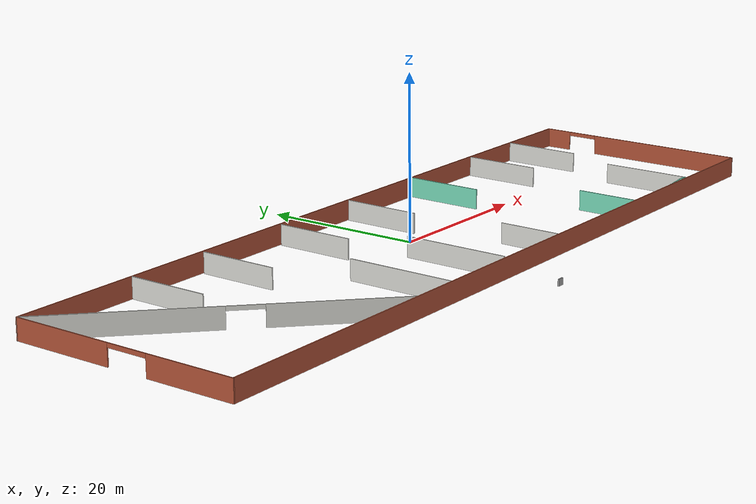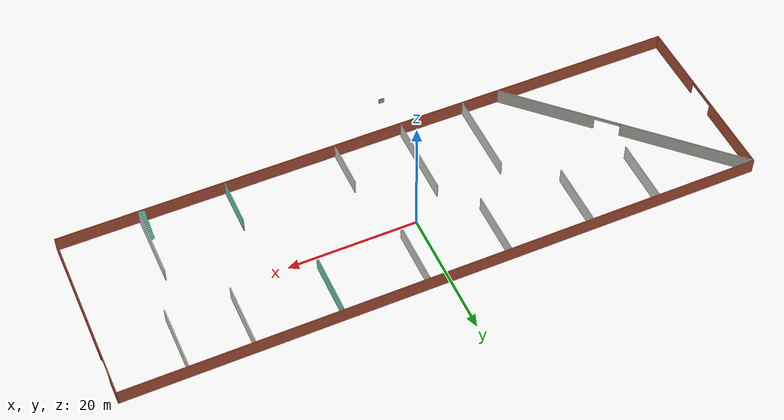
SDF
<?xml version='1.0'?>
<sdf version='1.6'>
  <model name='mybuild'>
    <pose frame=''>-0.240831 -2.44222 0 0 -0 0</pose>
    <link name='Stairs_0'>
      <visual name='Stairs_0_Visual_0'>
        <pose frame=''>36.1595 -10.4414 0.083333 0 -0 0</pose>
        <geometry>
          <box>
            <size>1 0.233333 0.166667</size>
          </box>
        </geometry>
        <material>
          <script>
            <uri>file://media/materials/scripts/gazebo.material</uri>
            <name>Gazebo/Grey</name>
          </script>
          <ambient>0.435294 0.796078 0.67451 1</ambient>
        </material>
        <meta>
          <layer>0</layer>
        </meta>
      </visual>
      <collision name='Stairs_0_Collision_0'>
        <geometry>
          <box>
            <size>1 0.233333 0.166667</size>
          </box>
        </geometry>
        <pose frame=''>36.1595 -10.4414 0.083333 0 -0 0</pose>
      </collision>
      <visual name='Stairs_0_Visual_1'>
        <pose frame=''>36.1595 -10.6748 0.25 0 -0 0</pose>
        <geometry>
          <box>
            <size>1 0.233333 0.166667</size>
          </box>
        </geometry>
        <material>
          <script>
            <uri>file://media/materials/scripts/gazebo.material</uri>
            <name>Gazebo/Grey</name>
          </script>
          <ambient>0.435294 0.796078 0.67451 1</ambient>
        </material>
        <meta>
          <layer>0</layer>
        </meta>
      </visual>
      <collision name='Stairs_0_Collision_1'>
        <geometry>
          <box>
            <size>1 0.233333 0.166667</size>
          </box>
        </geometry>
        <pose frame=''>36.1595 -10.6748 0.25 0 -0 0</pose>
      </collision>
      <visual name='Stairs_0_Visual_2'>
        <pose frame=''>36.1595 -10.9081 0.416667 0 -0 0</pose>
        <geometry>
          <box>
            <size>1 0.233333 0.166667</size>
          </box>
        </geometry>
        <material>
          <script>
            <uri>file://media/materials/scripts/gazebo.material</uri>
            <name>Gazebo/Grey</name>
          </script>
          <ambient>0.435294 0.796078 0.67451 1</ambient>
        </material>
        <meta>
          <layer>0</layer>
        </meta>
      </visual>
      <collision name='Stairs_0_Collision_2'>
        <geometry>
          <box>
            <size>1 0.233333 0.166667</size>
          </box>
        </geometry>
        <pose frame=''>36.1595 -10.9081 0.416667 0 -0 0</pose>
      </collision>
      <visual name='Stairs_0_Visual_3'>
        <pose frame=''>36.1595 -11.1414 0.583333 0 -0 0</pose>
        <geometry>
          <box>
            <size>1 0.233333 0.166667</size>
          </box>
        </geometry>
        <material>
          <script>
            <uri>file://media/materials/scripts/gazebo.material</uri>
            <name>Gazebo/Grey</name>
          </script>
          <ambient>0.435294 0.796078 0.67451 1</ambient>
        </material>
        <meta>
          <layer>0</layer>
        </meta>
      </visual>
      <collision name='Stairs_0_Collision_3'>
        <geometry>
          <box>
            <size>1 0.233333 0.166667</size>
          </box>
        </geometry>
        <pose frame=''>36.1595 -11.1414 0.583333 0 -0 0</pose>
      </collision>
      <visual name='Stairs_0_Visual_4'>
        <pose frame=''>36.1595 -11.3748 0.75 0 -0 0</pose>
        <geometry>
          <box>
            <size>1 0.233333 0.166667</size>
          </box>
        </geometry>
        <material>
          <script>
            <uri>file://media/materials/scripts/gazebo.material</uri>
            <name>Gazebo/Grey</name>
          </script>
          <ambient>0.435294 0.796078 0.67451 1</ambient>
        </material>
        <meta>
          <layer>0</layer>
        </meta>
      </visual>
      <collision name='Stairs_0_Collision_4'>
        <geometry>
          <box>
            <size>1 0.233333 0.166667</size>
          </box>
        </geometry>
        <pose frame=''>36.1595 -11.3748 0.75 0 -0 0</pose>
      </collision>
      <visual name='Stairs_0_Visual_5'>
        <pose frame=''>36.1595 -11.6081 0.916667 0 -0 0</pose>
        <geometry>
          <box>
            <size>1 0.233333 0.166667</size>
          </box>
        </geometry>
        <material>
          <script>
            <uri>file://media/materials/scripts/gazebo.material</uri>
            <name>Gazebo/Grey</name>
          </script>
          <ambient>0.435294 0.796078 0.67451 1</ambient>
        </material>
        <meta>
          <layer>0</layer>
        </meta>
      </visual>
      <collision name='Stairs_0_Collision_5'>
        <geometry>
          <box>
            <size>1 0.233333 0.166667</size>
          </box>
        </geometry>
        <pose frame=''>36.1595 -11.6081 0.916667 0 -0 0</pose>
      </collision>
      <visual name='Stairs_0_Visual_6'>
        <pose frame=''>36.1595 -11.8414 1.08333 0 -0 0</pose>
        <geometry>
          <box>
            <size>1 0.233333 0.166667</size>
          </box>
        </geometry>
        <material>
          <script>
            <uri>file://media/materials/scripts/gazebo.material</uri>
            <name>Gazebo/Grey</name>
          </script>
          <ambient>0.435294 0.796078 0.67451 1</ambient>
        </material>
        <meta>
          <layer>0</layer>
        </meta>
      </visual>
      <collision name='Stairs_0_Collision_6'>
        <geometry>
          <box>
            <size>1 0.233333 0.166667</size>
          </box>
        </geometry>
        <pose frame=''>36.1595 -11.8414 1.08333 0 -0 0</pose>
      </collision>
      <visual name='Stairs_0_Visual_7'>
        <pose frame=''>36.1595 -12.0748 1.25 0 -0 0</pose>
        <geometry>
          <box>
            <size>1 0.233333 0.166667</size>
          </box>
        </geometry>
        <material>
          <script>
            <uri>file://media/materials/scripts/gazebo.material</uri>
            <name>Gazebo/Grey</name>
          </script>
          <ambient>0.435294 0.796078 0.67451 1</ambient>
        </material>
        <meta>
          <layer>0</layer>
        </meta>
      </visual>
      <collision name='Stairs_0_Collision_7'>
        <geometry>
          <box>
            <size>1 0.233333 0.166667</size>
          </box>
        </geometry>
        <pose frame=''>36.1595 -12.0748 1.25 0 -0 0</pose>
      </collision>
      <visual name='Stairs_0_Visual_8'>
        <pose frame=''>36.1595 -12.3081 1.41667 0 -0 0</pose>
        <geometry>
          <box>
            <size>1 0.233333 0.166667</size>
          </box>
        </geometry>
        <material>
          <script>
            <uri>file://media/materials/scripts/gazebo.material</uri>
            <name>Gazebo/Grey</name>
          </script>
          <ambient>0.435294 0.796078 0.67451 1</ambient>
        </material>
        <meta>
          <layer>0</layer>
        </meta>
      </visual>
      <collision name='Stairs_0_Collision_8'>
        <geometry>
          <box>
            <size>1 0.233333 0.166667</size>
          </box>
        </geometry>
        <pose frame=''>36.1595 -12.3081 1.41667 0 -0 0</pose>
      </collision>
      <visual name='Stairs_0_Visual_9'>
        <pose frame=''>36.1595 -12.5414 1.58333 0 -0 0</pose>
        <geometry>
          <box>
            <size>1 0.233333 0.166667</size>
          </box>
        </geometry>
        <material>
          <script>
            <uri>file://media/materials/scripts/gazebo.material</uri>
            <name>Gazebo/Grey</name>
          </script>
          <ambient>0.435294 0.796078 0.67451 1</ambient>
        </material>
        <meta>
          <layer>0</layer>
        </meta>
      </visual>
      <collision name='Stairs_0_Collision_9'>
        <geometry>
          <box>
            <size>1 0.233333 0.166667</size>
          </box>
        </geometry>
        <pose frame=''>36.1595 -12.5414 1.58333 0 -0 0</pose>
      </collision>
      <visual name='Stairs_0_Visual_10'>
        <pose frame=''>36.1595 -12.7748 1.75 0 -0 0</pose>
        <geometry>
          <box>
            <size>1 0.233333 0.166667</size>
          </box>
        </geometry>
        <material>
          <script>
            <uri>file://media/materials/scripts/gazebo.material</uri>
            <name>Gazebo/Grey</name>
          </script>
          <ambient>0.435294 0.796078 0.67451 1</ambient>
        </material>
        <meta>
          <layer>0</layer>
        </meta>
      </visual>
      <collision name='Stairs_0_Collision_10'>
        <geometry>
          <box>
            <size>1 0.233333 0.166667</size>
          </box>
        </geometry>
        <pose frame=''>36.1595 -12.7748 1.75 0 -0 0</pose>
      </collision>
      <visual name='Stairs_0_Visual_11'>
        <pose frame=''>36.1595 -13.0081 1.91667 0 -0 0</pose>
        <geometry>
          <box>
            <size>1 0.233333 0.166667</size>
          </box>
        </geometry>
        <material>
          <script>
            <uri>file://media/materials/scripts/gazebo.material</uri>
            <name>Gazebo/Grey</name>
          </script>
          <ambient>0.435294 0.796078 0.67451 1</ambient>
        </material>
        <meta>
          <layer>0</layer>
        </meta>
      </visual>
      <collision name='Stairs_0_Collision_11'>
        <geometry>
          <box>
            <size>1 0.233333 0.166667</size>
          </box>
        </geometry>
        <pose frame=''>36.1595 -13.0081 1.91667 0 -0 0</pose>
      </collision>
      <visual name='Stairs_0_Visual_12'>
        <pose frame=''>36.1595 -13.2414 2.08333 0 -0 0</pose>
        <geometry>
          <box>
            <size>1 0.233333 0.166667</size>
          </box>
        </geometry>
        <material>
          <script>
            <uri>file://media/materials/scripts/gazebo.material</uri>
            <name>Gazebo/Grey</name>
          </script>
          <ambient>0.435294 0.796078 0.67451 1</ambient>
        </material>
        <meta>
          <layer>0</layer>
        </meta>
      </visual>
      <collision name='Stairs_0_Collision_12'>
        <geometry>
          <box>
            <size>1 0.233333 0.166667</size>
          </box>
        </geometry>
        <pose frame=''>36.1595 -13.2414 2.08333 0 -0 0</pose>
      </collision>
      <visual name='Stairs_0_Visual_13'>
        <pose frame=''>36.1595 -13.4748 2.25 0 -0 0</pose>
        <geometry>
          <box>
            <size>1 0.233333 0.166667</size>
          </box>
        </geometry>
        <material>
          <script>
            <uri>file://media/materials/scripts/gazebo.material</uri>
            <name>Gazebo/Grey</name>
          </script>
          <ambient>0.435294 0.796078 0.67451 1</ambient>
        </material>
        <meta>
          <layer>0</layer>
        </meta>
      </visual>
      <collision name='Stairs_0_Collision_13'>
        <geometry>
          <box>
            <size>1 0.233333 0.166667</size>
          </box>
        </geometry>
        <pose frame=''>36.1595 -13.4748 2.25 0 -0 0</pose>
      </collision>
      <visual name='Stairs_0_Visual_14'>
        <pose frame=''>36.1595 -13.7081 2.41667 0 -0 0</pose>
        <geometry>
          <box>
            <size>1 0.233333 0.166667</size>
          </box>
        </geometry>
        <material>
          <script>
            <uri>file://media/materials/scripts/gazebo.material</uri>
            <name>Gazebo/Grey</name>
          </script>
          <ambient>0.435294 0.796078 0.67451 1</ambient>
        </material>
        <meta>
          <layer>0</layer>
        </meta>
      </visual>
      <collision name='Stairs_0_Collision_14'>
        <geometry>
          <box>
            <size>1 0.233333 0.166667</size>
          </box>
        </geometry>
        <pose frame=''>36.1595 -13.7081 2.41667 0 -0 0</pose>
      </collision>
    </link>
    <link name='Wall_0'>
      <pose frame=''>-48.9095 -0.015534 0 0 0 -1.5708</pose>
      <visual name='Wall_0_Visual_0'>
        <pose frame=''>-7.88659 0 1.25 0 -0 0</pose>
        <geometry>
          <box>
            <size>12.4768 0.15 2.5</size>
          </box>
        </geometry>
        <material>
          <script>
            <uri>file://media/materials/scripts/gazebo.material</uri>
            <name>Gazebo/Bricks</name>
          </script>
          <ambient>0.435294 0.796078 0.67451 1</ambient>
        </material>
        <meta>
          <layer>0</layer>
        </meta>
      </visual>
      <collision name='Wall_0_Collision_0'>
        <geometry>
          <box>
            <size>12.4768 0.15 2.5</size>
          </box>
        </geometry>
        <pose frame=''>-7.88659 0 1.25 0 -0 0</pose>
      </collision>
      <visual name='Wall_0_Visual_1'>
        <pose frame=''>8.73841 0 1.25 0 -0 0</pose>
        <geometry>
          <box>
            <size>10.7732 0.15 2.5</size>
          </box>
        </geometry>
        <material>
          <script>
            <uri>file://media/materials/scripts/gazebo.material</uri>
            <name>Gazebo/Bricks</name>
          </script>
          <ambient>0.435294 0.796078 0.67451 1</ambient>
        </material>
        <meta>
          <layer>0</layer>
        </meta>
      </visual>
      <collision name='Wall_0_Collision_1'>
        <geometry>
          <box>
            <size>10.7732 0.15 2.5</size>
          </box>
        </geometry>
        <pose frame=''>8.73841 0 1.25 0 -0 0</pose>
      </collision>
      <visual name='Wall_0_Visual_2'>
        <pose frame=''>0.85183 0 2.25 0 -0 0</pose>
        <geometry>
          <box>
            <size>5 0.15 0.5</size>
          </box>
        </geometry>
        <material>
          <script>
            <uri>file://media/materials/scripts/gazebo.material</uri>
            <name>Gazebo/Bricks</name>
          </script>
          <ambient>0.435294 0.796078 0.67451 1</ambient>
        </material>
        <meta>
          <layer>0</layer>
        </meta>
      </visual>
      <collision name='Wall_0_Collision_2'>
        <geometry>
          <box>
            <size>5 0.15 0.5</size>
          </box>
        </geometry>
        <pose frame=''>0.85183 0 2.25 0 -0 0</pose>
      </collision>
    </link>
    <link name='Wall_1'>
      <collision name='Wall_1_Collision'>
        <geometry>
          <box>
            <size>98 0.15 2.5</size>
          </box>
        </geometry>
        <pose frame=''>0 0 1.25 0 -0 0</pose>
      </collision>
      <visual name='Wall_1_Visual'>
        <pose frame=''>0 0 1.25 0 -0 0</pose>
        <geometry>
          <box>
            <size>98 0.15 2.5</size>
          </box>
        </geometry>
        <material>
          <script>
            <uri>file://media/materials/scripts/gazebo.material</uri>
            <name>Gazebo/Bricks</name>
          </script>
          <ambient>0.435294 0.796078 0.67451 1</ambient>
        </material>
        <meta>
          <layer>0</layer>
        </meta>
      </visual>
      <pose frame=''>0.015532 -14.0655 0 0 -0 0</pose>
    </link>
    <link name='Wall_11'>
      <collision name='Wall_11_Collision'>
        <geometry>
          <box>
            <size>9.75 0.15 2.5</size>
          </box>
        </geometry>
        <pose frame=''>0 0 1.25 0 -0 0</pose>
      </collision>
      <visual name='Wall_11_Visual'>
        <pose frame=''>0 0 1.25 0 -0 0</pose>
        <geometry>
          <box>
            <size>9.75 0.15 2.5</size>
          </box>
        </geometry>
        <material>
          <script>
            <uri>file://media/materials/scripts/gazebo.material</uri>
            <name>Gazebo/CeilingTiled</name>
          </script>
          <ambient>0.435294 0.796078 0.67451 1</ambient>
        </material>
        <meta>
          <layer>0</layer>
        </meta>
      </visual>
      <pose frame=''>-9.21061 8.883 0 0 -0 1.5708</pose>
    </link>
    <link name='Wall_13'>
      <collision name='Wall_13_Collision'>
        <geometry>
          <box>
            <size>9.75 0.15 2.5</size>
          </box>
        </geometry>
        <pose frame=''>0 0 1.25 0 -0 0</pose>
      </collision>
      <visual name='Wall_13_Visual'>
        <pose frame=''>0 0 1.25 0 -0 0</pose>
        <geometry>
          <box>
            <size>9.75 0.15 2.5</size>
          </box>
        </geometry>
        <material>
          <script>
            <uri>file://media/materials/scripts/gazebo.material</uri>
            <name>Gazebo/CeilingTiled</name>
          </script>
          <ambient>0.435294 0.796078 0.67451 1</ambient>
        </material>
        <meta>
          <layer>0</layer>
        </meta>
      </visual>
      <pose frame=''>3.41598 8.99001 0 0 -0 1.5708</pose>
    </link>
    <link name='Wall_14'>
      <collision name='Wall_14_Collision'>
        <geometry>
          <box>
            <size>0.15 0.15 2.5</size>
          </box>
        </geometry>
        <pose frame=''>0 0 1.25 0 -0 0</pose>
      </collision>
      <visual name='Wall_14_Visual'>
        <pose frame=''>0 0 1.25 0 -0 0</pose>
        <geometry>
          <box>
            <size>0.15 0.15 2.5</size>
          </box>
        </geometry>
        <material>
          <script>
            <uri>file://media/materials/scripts/gazebo.material</uri>
            <name>Gazebo/Grey</name>
          </script>
          <ambient>1 1 1 1</ambient>
        </material>
        <meta>
          <layer>0</layer>
        </meta>
      </visual>
      <pose frame=''>3.41598 13.79 0 0 -0 0</pose>
    </link>
    <link name='Wall_16'>
      <collision name='Wall_16_Collision'>
        <geometry>
          <box>
            <size>9.75 0.15 2.5</size>
          </box>
        </geometry>
        <pose frame=''>0 0 1.25 0 -0 0</pose>
      </collision>
      <visual name='Wall_16_Visual'>
        <pose frame=''>0 0 1.25 0 -0 0</pose>
        <geometry>
          <box>
            <size>9.75 0.15 2.5</size>
          </box>
        </geometry>
        <material>
          <script>
            <uri>file://media/materials/scripts/gazebo.material</uri>
            <name>Gazebo/Grey</name>
          </script>
          <ambient>0.435294 0.796078 0.67451 1</ambient>
        </material>
        <meta>
          <layer>0</layer>
        </meta>
      </visual>
      <pose frame=''>16.3636 8.99001 0 0 -0 1.5708</pose>
    </link>
    <link name='Wall_18'>
      <collision name='Wall_18_Collision'>
        <geometry>
          <box>
            <size>9.75 0.15 2.5</size>
          </box>
        </geometry>
        <pose frame=''>0 0 1.25 0 -0 0</pose>
      </collision>
      <visual name='Wall_18_Visual'>
        <pose frame=''>0 0 1.25 0 -0 0</pose>
        <geometry>
          <box>
            <size>9.75 0.15 2.5</size>
          </box>
        </geometry>
        <material>
          <script>
            <uri>file://media/materials/scripts/gazebo.material</uri>
            <name>Gazebo/CeilingTiled</name>
          </script>
          <ambient>0.435294 0.796078 0.67451 1</ambient>
        </material>
        <meta>
          <layer>0</layer>
        </meta>
      </visual>
      <pose frame=''>29.3112 8.99001 0 0 -0 1.5708</pose>
    </link>
    <link name='Wall_2'>
      <pose frame=''>48.9405 -0.015534 0 0 -0 1.5708</pose>
      <visual name='Wall_2_Visual_0'>
        <pose frame=''>-3.74437 0 1.25 0 -0 0</pose>
        <geometry>
          <box>
            <size>20.7613 0.15 2.5</size>
          </box>
        </geometry>
        <material>
          <script>
            <uri>file://media/materials/scripts/gazebo.material</uri>
            <name>Gazebo/Bricks</name>
          </script>
          <ambient>0.435294 0.796078 0.67451 1</ambient>
        </material>
        <meta>
          <layer>0</layer>
        </meta>
      </visual>
      <collision name='Wall_2_Collision_0'>
        <geometry>
          <box>
            <size>20.7613 0.15 2.5</size>
          </box>
        </geometry>
        <pose frame=''>-3.74437 0 1.25 0 -0 0</pose>
      </collision>
      <visual name='Wall_2_Visual_1'>
        <pose frame=''>12.3806 0 1.25 0 -0 0</pose>
        <geometry>
          <box>
            <size>3.48873 0.15 2.5</size>
          </box>
        </geometry>
        <material>
          <script>
            <uri>file://media/materials/scripts/gazebo.material</uri>
            <name>Gazebo/Bricks</name>
          </script>
          <ambient>0.435294 0.796078 0.67451 1</ambient>
        </material>
        <meta>
          <layer>0</layer>
        </meta>
      </visual>
      <collision name='Wall_2_Collision_1'>
        <geometry>
          <box>
            <size>3.48873 0.15 2.5</size>
          </box>
        </geometry>
        <pose frame=''>12.3806 0 1.25 0 -0 0</pose>
      </collision>
      <visual name='Wall_2_Visual_2'>
        <pose frame=''>8.63627 0 2.25 0 -0 0</pose>
        <geometry>
          <box>
            <size>4 0.15 0.5</size>
          </box>
        </geometry>
        <material>
          <script>
            <uri>file://media/materials/scripts/gazebo.material</uri>
            <name>Gazebo/Bricks</name>
          </script>
          <ambient>0.435294 0.796078 0.67451 1</ambient>
        </material>
        <meta>
          <layer>0</layer>
        </meta>
      </visual>
      <collision name='Wall_2_Collision_2'>
        <geometry>
          <box>
            <size>4 0.15 0.5</size>
          </box>
        </geometry>
        <pose frame=''>8.63627 0 2.25 0 -0 0</pose>
      </collision>
    </link>
    <link name='Wall_20'>
      <collision name='Wall_20_Collision'>
        <geometry>
          <box>
            <size>10 0.15 2.5</size>
          </box>
        </geometry>
        <pose frame=''>0 0 1.25 0 -0 0</pose>
      </collision>
      <visual name='Wall_20_Visual'>
        <pose frame=''>0 0 1.25 0 -0 0</pose>
        <geometry>
          <box>
            <size>10 0.15 2.5</size>
          </box>
        </geometry>
        <material>
          <script>
            <uri>file://media/materials/scripts/gazebo.material</uri>
            <name>Gazebo/CeilingTiled</name>
          </script>
          <ambient>0.435294 0.796078 0.67451 1</ambient>
        </material>
        <meta>
          <layer>0</layer>
        </meta>
      </visual>
      <pose frame=''>38.8346 8.901 0 0 -0 1.5708</pose>
    </link>
    <link name='Wall_22'>
      <collision name='Wall_22_Collision'>
        <geometry>
          <box>
            <size>11.5 0.15 2.5</size>
          </box>
        </geometry>
        <pose frame=''>0 0 1.25 0 -0 0</pose>
      </collision>
      <visual name='Wall_22_Visual'>
        <pose frame=''>0 0 1.25 0 -0 0</pose>
        <geometry>
          <box>
            <size>11.5 0.15 2.5</size>
          </box>
        </geometry>
        <material>
          <script>
            <uri>file://media/materials/scripts/gazebo.material</uri>
            <name>Gazebo/CeilingTiled</name>
          </script>
          <ambient>0.435294 0.796078 0.67451 1</ambient>
        </material>
        <meta>
          <layer>0</layer>
        </meta>
      </visual>
      <pose frame=''>36.5875 -8.32584 0 0 -0 1.5708</pose>
    </link>
    <link name='Wall_25'>
      <collision name='Wall_25_Collision'>
        <geometry>
          <box>
            <size>13.25 0.15 2.5</size>
          </box>
        </geometry>
        <pose frame=''>0 0 1.25 0 -0 0</pose>
      </collision>
      <visual name='Wall_25_Visual'>
        <pose frame=''>0 0 1.25 0 -0 0</pose>
        <geometry>
          <box>
            <size>13.25 0.15 2.5</size>
          </box>
        </geometry>
        <material>
          <script>
            <uri>file://media/materials/scripts/gazebo.material</uri>
            <name>Gazebo/CeilingTiled</name>
          </script>
          <ambient>0.435294 0.796078 0.67451 1</ambient>
        </material>
        <meta>
          <layer>0</layer>
        </meta>
      </visual>
      <pose frame=''>-14.8819 -7.34384 0 0 -0 1.5708</pose>
    </link>
    <link name='Wall_27'>
      <collision name='Wall_27_Collision'>
        <geometry>
          <box>
            <size>13 0.15 2.5</size>
          </box>
        </geometry>
        <pose frame=''>0 0 1.25 0 -0 0</pose>
      </collision>
      <visual name='Wall_27_Visual'>
        <pose frame=''>0 0 1.25 0 -0 0</pose>
        <geometry>
          <box>
            <size>13 0.15 2.5</size>
          </box>
        </geometry>
        <material>
          <script>
            <uri>file://media/materials/scripts/gazebo.material</uri>
            <name>Gazebo/CeilingTiled</name>
          </script>
          <ambient>0.435294 0.796078 0.67451 1</ambient>
        </material>
        <meta>
          <layer>0</layer>
        </meta>
      </visual>
      <pose frame=''>-4.53188 -7.21884 0 0 0 -1.5708</pose>
    </link>
    <link name='Wall_29'>
      <collision name='Wall_29_Collision'>
        <geometry>
          <box>
            <size>7.5 0.15 2.5</size>
          </box>
        </geometry>
        <pose frame=''>0 0 1.25 0 -0 0</pose>
      </collision>
      <visual name='Wall_29_Visual'>
        <pose frame=''>0 0 1.25 0 -0 0</pose>
        <geometry>
          <box>
            <size>7.5 0.15 2.5</size>
          </box>
        </geometry>
        <material>
          <script>
            <uri>file://media/materials/scripts/gazebo.material</uri>
            <name>Gazebo/CeilingTiled</name>
          </script>
          <ambient>0.435294 0.796078 0.67451 1</ambient>
        </material>
        <meta>
          <layer>0</layer>
        </meta>
      </visual>
      <pose frame=''>6.0911 -10.1118 0 0 -0 1.5708</pose>
    </link>
    <link name='Wall_3'>
      <collision name='Wall_3_Collision'>
        <geometry>
          <box>
            <size>98 0.15 2.5</size>
          </box>
        </geometry>
        <pose frame=''>0 0 1.25 0 -0 0</pose>
      </collision>
      <visual name='Wall_3_Visual'>
        <pose frame=''>0 0 1.25 0 -0 0</pose>
        <geometry>
          <box>
            <size>98 0.15 2.5</size>
          </box>
        </geometry>
        <material>
          <script>
            <uri>file://media/materials/scripts/gazebo.material</uri>
            <name>Gazebo/Bricks</name>
          </script>
          <ambient>0.435294 0.796078 0.67451 1</ambient>
        </material>
        <meta>
          <layer>0</layer>
        </meta>
      </visual>
      <pose frame=''>0.015532 14.0345 0 0 -0 3.14159</pose>
    </link>
    <link name='Wall_31'>
      <collision name='Wall_31_Collision'>
        <geometry>
          <box>
            <size>7.5 0.15 2.5</size>
          </box>
        </geometry>
        <pose frame=''>0 0 1.25 0 -0 0</pose>
      </collision>
      <visual name='Wall_31_Visual'>
        <pose frame=''>0 0 1.25 0 -0 0</pose>
        <geometry>
          <box>
            <size>7.5 0.15 2.5</size>
          </box>
        </geometry>
        <material>
          <script>
            <uri>file://media/materials/scripts/gazebo.material</uri>
            <name>Gazebo/Grey</name>
          </script>
          <ambient>0.435294 0.796078 0.67451 1</ambient>
        </material>
        <meta>
          <layer>0</layer>
        </meta>
      </visual>
      <pose frame=''>23.4411 -10.1118 0 0 0 -1.5708</pose>
    </link>
    <link name='Wall_4'>
      <pose frame=''>-34.9088 0.033752 0 0 0 -0.785398</pose>
      <visual name='Wall_4_Visual_0'>
        <pose frame=''>-9.676 0 1.25 0 -0 0</pose>
        <geometry>
          <box>
            <size>20.398 0.15 2.5</size>
          </box>
        </geometry>
        <material>
          <script>
            <uri>file://media/materials/scripts/gazebo.material</uri>
            <name>Gazebo/CeilingTiled</name>
          </script>
          <ambient>0.435294 0.796078 0.67451 1</ambient>
        </material>
        <meta>
          <layer>0</layer>
        </meta>
      </visual>
      <collision name='Wall_4_Collision_0'>
        <geometry>
          <box>
            <size>20.398 0.15 2.5</size>
          </box>
        </geometry>
        <pose frame=''>-9.676 0 1.25 0 -0 0</pose>
      </collision>
      <visual name='Wall_4_Visual_1'>
        <pose frame=''>12.199 0 1.25 0 -0 0</pose>
        <geometry>
          <box>
            <size>15.352 0.15 2.5</size>
          </box>
        </geometry>
        <material>
          <script>
            <uri>file://media/materials/scripts/gazebo.material</uri>
            <name>Gazebo/CeilingTiled</name>
          </script>
          <ambient>0.435294 0.796078 0.67451 1</ambient>
        </material>
        <meta>
          <layer>0</layer>
        </meta>
      </visual>
      <collision name='Wall_4_Collision_1'>
        <geometry>
          <box>
            <size>15.352 0.15 2.5</size>
          </box>
        </geometry>
        <pose frame=''>12.199 0 1.25 0 -0 0</pose>
      </collision>
      <visual name='Wall_4_Visual_2'>
        <pose frame=''>2.523 0 2.25 0 -0 0</pose>
        <geometry>
          <box>
            <size>4 0.15 0.5</size>
          </box>
        </geometry>
        <material>
          <script>
            <uri>file://media/materials/scripts/gazebo.material</uri>
            <name>Gazebo/CeilingTiled</name>
          </script>
          <ambient>0.435294 0.796078 0.67451 1</ambient>
        </material>
        <meta>
          <layer>0</layer>
        </meta>
      </visual>
      <collision name='Wall_4_Collision_2'>
        <geometry>
          <box>
            <size>4 0.15 0.5</size>
          </box>
        </geometry>
        <pose frame=''>2.523 0 2.25 0 -0 0</pose>
      </collision>
    </link>
    <link name='Wall_6'>
      <collision name='Wall_6_Collision'>
        <geometry>
          <box>
            <size>10 0.15 2.5</size>
          </box>
        </geometry>
        <pose frame=''>0 0 1.25 0 -0 0</pose>
      </collision>
      <visual name='Wall_6_Visual'>
        <pose frame=''>0 0 1.25 0 -0 0</pose>
        <geometry>
          <box>
            <size>10 0.15 2.5</size>
          </box>
        </geometry>
        <material>
          <script>
            <uri>file://media/materials/scripts/gazebo.material</uri>
            <name>Gazebo/CeilingTiled</name>
          </script>
          <ambient>0.435294 0.796078 0.67451 1</ambient>
        </material>
        <meta>
          <layer>0</layer>
        </meta>
      </visual>
      <pose frame=''>-33.0727 9.00246 0 0 0 -1.5708</pose>
    </link>
    <link name='Wall_9'>
      <collision name='Wall_9_Collision'>
        <geometry>
          <box>
            <size>9.75 0.15 2.5</size>
          </box>
        </geometry>
        <pose frame=''>0 0 1.25 0 -0 0</pose>
      </collision>
      <visual name='Wall_9_Visual'>
        <pose frame=''>0 0 1.25 0 -0 0</pose>
        <geometry>
          <box>
            <size>9.75 0.15 2.5</size>
          </box>
        </geometry>
        <material>
          <script>
            <uri>file://media/materials/scripts/gazebo.material</uri>
            <name>Gazebo/CeilingTiled</name>
          </script>
          <ambient>0.435294 0.796078 0.67451 1</ambient>
        </material>
        <meta>
          <layer>0</layer>
        </meta>
      </visual>
      <pose frame=''>-22.2652 8.883 0 0 -0 1.5708</pose>
    </link>
    <link name='Window_0'>
      <collision name='Window_0_Collision'>
        <geometry>
          <box>
            <size>0.8 0.17 0.8</size>
          </box>
        </geometry>
        <pose frame=''>0 0 0.4 0 -0 0</pose>
      </collision>
      <visual name='Window_0_Visual'>
        <pose frame=''>0 0 0.4 0 -0 0</pose>
        <geometry>
          <box>
            <size>0.8 0.17 0.8</size>
          </box>
        </geometry>
        <material>
          <script>
            <uri>file://media/materials/scripts/gazebo.material</uri>
            <name>Gazebo/Grey</name>
          </script>
        </material>
      </visual>
      <pose frame=''>-4.40441 -20.7578 0.5 0 -0 0</pose>
    </link>
    <static>1</static>
  </model>
</sdf>
